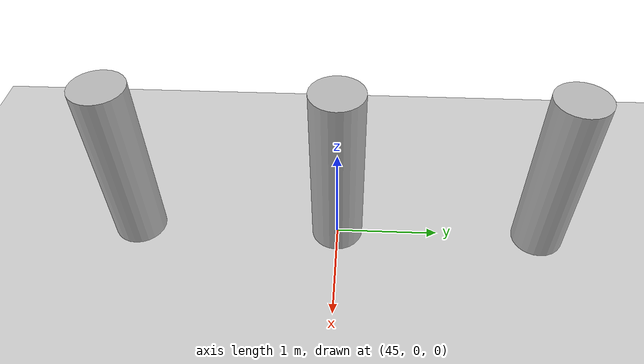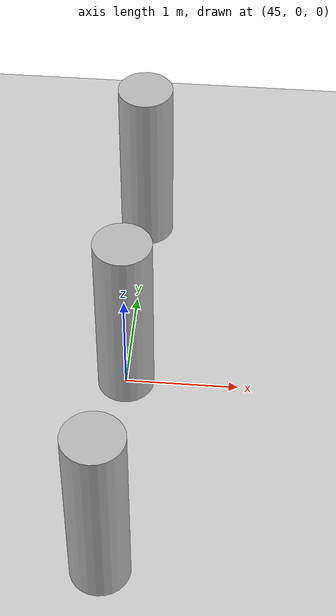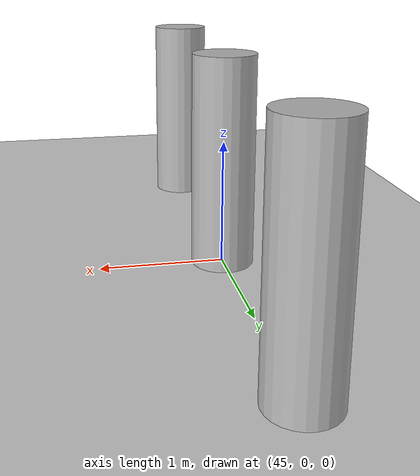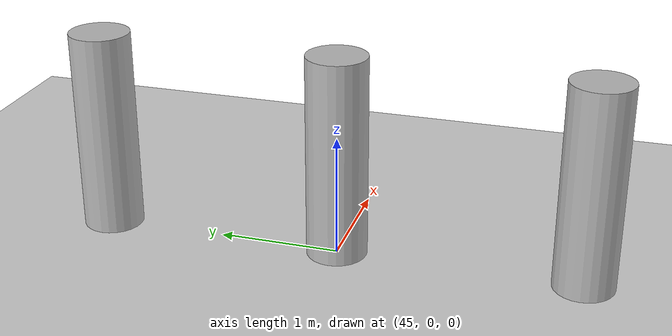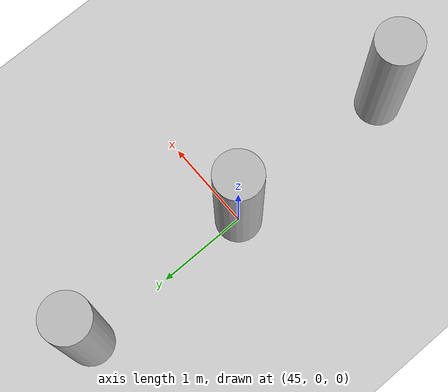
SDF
<?xml version="1.0" ?>
<sdf version="1.6">

  <world name="default">

    <include>
      <uri>model://ground_plane</uri>
    </include>

    <include>
      <uri>model://sun</uri>
    </include>

    <model name='cylinder_L'>
      <link name='cylinder_link_L'>
	<pose frame=''>0 0 0 0 0 0</pose>
	<inertial>
	  <pose frame=''>45 2 0 0 0 0</pose>
	  <mass>70</mass>
	  <inertia>
	    <ixx>70</ixx>
	    <ixy>0</ixy>
	    <ixz>0</ixz>
	    <iyy>70</iyy>
	    <iyz>0</iyz>
	    <izz>70</izz>
	  </inertia>
	</inertial>
	<collision name='cylinder_L_collision'>
	  <pose frame=''>45 2 0.85 0 0 0</pose>
	  <geometry>
	    <cylinder>
	      <length>1.7</length>
	      <radius>0.25</radius>
	      </cylinder>
	  </geometry>
	</collision>
	<visual name='cylinder_L_visual'>
	  <pose frame=''>45 2 0.85 0 0 0</pose>
	  <geometry>
	    <cylinder>
	      <length>1.7</length>
	      <radius>0.25</radius>
	    </cylinder>
	  </geometry>
	</visual>
      </link>
    </model>

        <model name='cylinder_M'>
      <link name='cylinder_link_M'>
	<pose frame=''>0 0 0 0 0 0</pose>
	<inertial>
	  <pose frame=''>45 0 0 0 0 0</pose>
	  <mass>70</mass>
	  <inertia>
	    <ixx>70</ixx>
	    <ixy>0</ixy>
	    <ixz>0</ixz>
	    <iyy>70</iyy>
	    <iyz>0</iyz>
	    <izz>70</izz>
	  </inertia>
	</inertial>
	<collision name='cylinder_M_collision'>
	  <pose frame=''>45 0 0.85 0 0 0</pose>
	  <geometry>
	    <cylinder>
	      <length>1.7</length>
	      <radius>0.25</radius>
	      </cylinder>
	  </geometry>
	</collision>
	<visual name='cylinder_M_visual'>
	  <pose frame=''>45 0 0.85 0 0 0</pose>
	  <geometry>
	    <cylinder>
	      <length>1.7</length>
	      <radius>0.25</radius>
	    </cylinder>
	  </geometry>
	</visual>
      </link>
    </model>

        <model name='cylinder_R'>
      <link name='cylinder_link_R'>
	<pose frame=''>0 0 0 0 0 0</pose>
	<inertial>
	  <pose frame=''>45 -2 0 0 0 0</pose>
	  <mass>70</mass>
	  <inertia>
	    <ixx>70</ixx>
	    <ixy>0</ixy>
	    <ixz>0</ixz>
	    <iyy>70</iyy>
	    <iyz>0</iyz>
	    <izz>70</izz>
	  </inertia>
	</inertial>
	<collision name='cylinder_R_collision'>
	  <pose frame=''>45 -2 0.85 0 0 0</pose>
	  <geometry>
	    <cylinder>
	      <length>1.7</length>
	      <radius>0.25</radius>
	      </cylinder>
	  </geometry>
	</collision>
	<visual name='cylinder_R_visual'>
	  <pose frame=''>45 -2 0.85 0 0 0</pose>
	  <geometry>
	    <cylinder>
	      <length>1.7</length>
	      <radius>0.25</radius>
	    </cylinder>
	  </geometry>
	</visual>
      </link>
    </model>

  </world>
</sdf>
